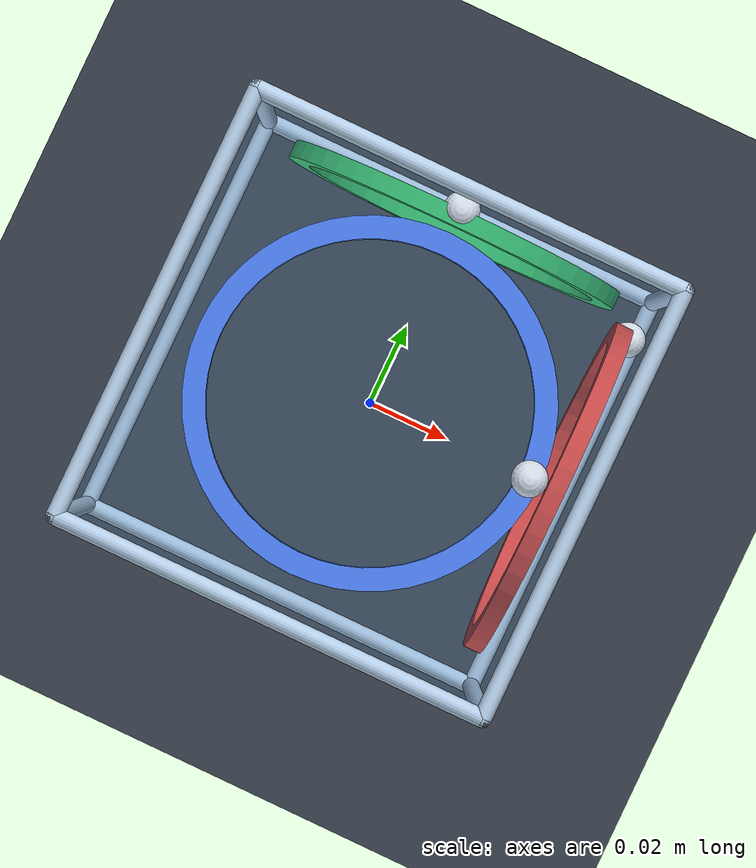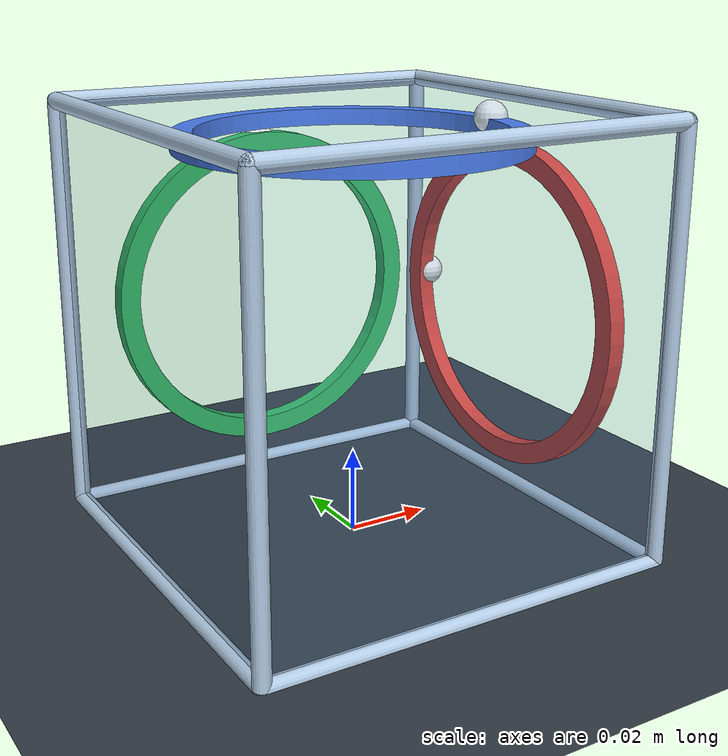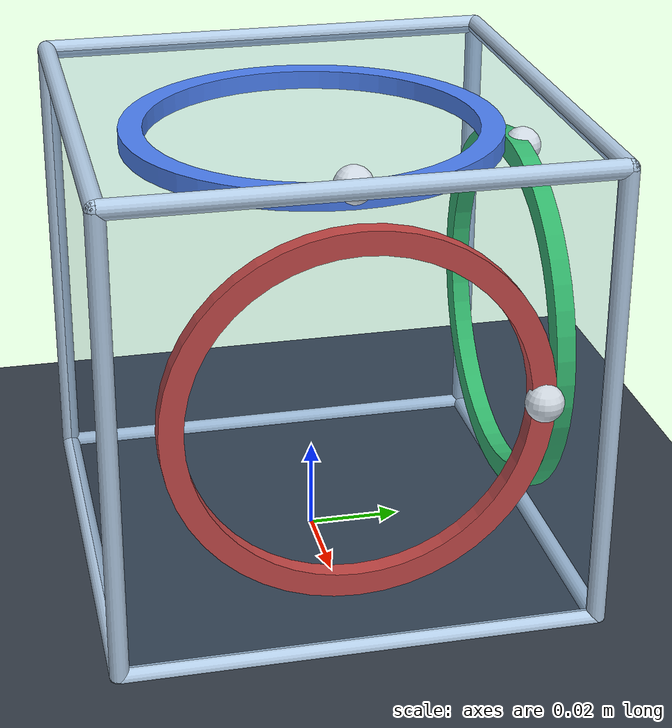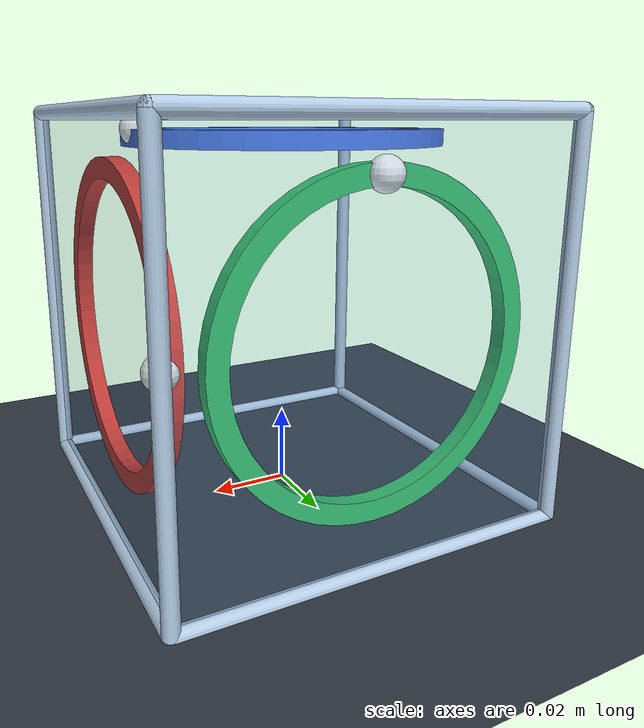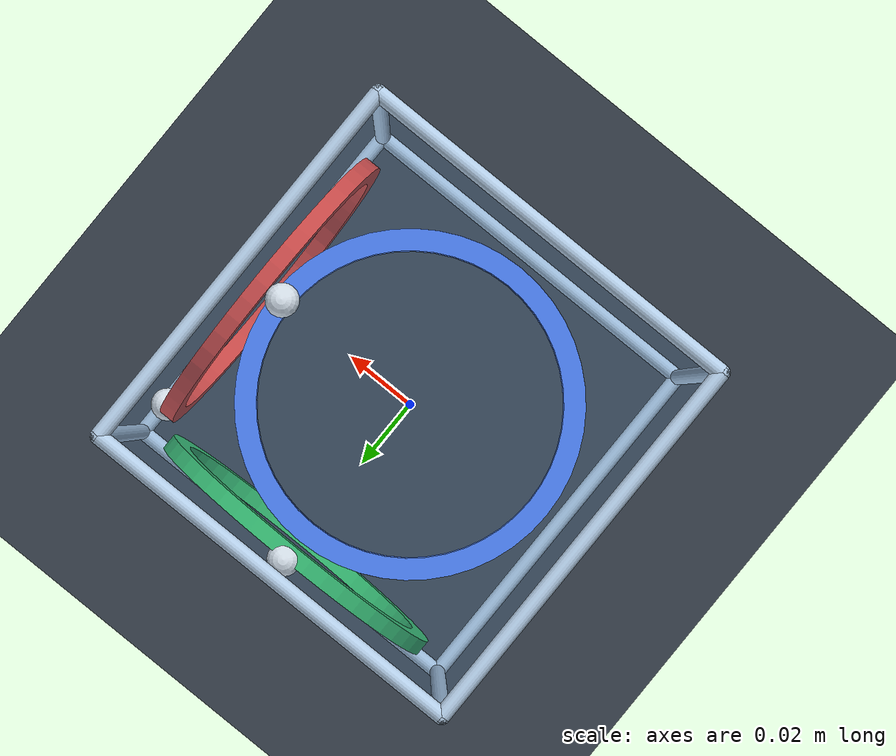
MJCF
<mujoco model="synthetic-annular-mechanism-fixture-spin-brake-v2">
  <compiler angle="radian" inertiafromgeom="false" />
  <option timestep="0.0001" integrator="RK4" solver="Newton" iterations="50" tolerance="1e-10" gravity="0 0 -9.8100000000000005" cone="elliptic">
    <flag energy="enable" />
  </option>
  <visual>
    <global offwidth="960" offheight="720" />
  </visual>
  <asset>
    <texture name="grid" type="2d" builtin="checker" rgb1=".17 .20 .24" rgb2=".23 .27 .31" width="256" height="256" />
    <material name="floor" texture="grid" texrepeat="12 12" />
    <mesh name="wheel_x_annulus" vertex="0.040000000000000001 0 -0.002 0.040000000000000001 0 0.002 0.035000000000000003 0 -0.002 0.035000000000000003 0 0.002 0.039657794454952419 0.0052210476888020626 -0.002 0.039657794454952419 0.0052210476888020626 0.002 0.034700570148083365 0.0045684167277018056 -0.002 0.034700570148083365 0.0045684167277018056 0.002 0.038637033051562734 0.01035276180410083 -0.002 0.038637033051562734 0.01035276180410083 0.002 0.033807403920117392 0.0090586665785882259 -0.002 0.033807403920117392 0.0090586665785882259 0.002 0.036955181300451473 0.015307337294603592 -0.002 0.036955181300451473 0.015307337294603592 0.002 0.032335783637895042 0.013393920132778143 -0.002 0.032335783637895042 0.013393920132778143 0.002 0.034641016151377546 0.019999999999999997 -0.002 0.034641016151377546 0.019999999999999997 0.002 0.030310889132455356 0.017499999999999998 -0.002 0.030310889132455356 0.017499999999999998 0.002 0.031734133611649409 0.024350457160348827 -0.002 0.031734133611649409 0.024350457160348827 0.002 0.027767366910193235 0.021306650015305226 -0.002 0.027767366910193235 0.021306650015305226 0.002 0.028284271247461905 0.028284271247461898 -0.002 0.028284271247461905 0.028284271247461898 0.002 0.024748737341529166 0.024748737341529162 -0.002 0.024748737341529166 0.024748737341529162 0.002 0.024350457160348827 0.031734133611649409 -0.002 0.024350457160348827 0.031734133611649409 0.002 0.021306650015305226 0.027767366910193235 -0.002 0.021306650015305226 0.027767366910193235 0.002 0.020000000000000004 0.034641016151377546 -0.002 0.020000000000000004 0.034641016151377546 0.002 0.017500000000000005 0.030310889132455353 -0.002 0.017500000000000005 0.030310889132455353 0.002 0.015307337294603594 0.036955181300451473 -0.002 0.015307337294603594 0.036955181300451473 0.002 0.013393920132778146 0.032335783637895042 -0.002 0.013393920132778146 0.032335783637895042 0.002 0.01035276180410083 0.038637033051562734 -0.002 0.01035276180410083 0.038637033051562734 0.002 0.0090586665785882259 0.033807403920117392 -0.002 0.0090586665785882259 0.033807403920117392 0.002 0.0052210476888020687 0.039657794454952419 -0.002 0.0052210476888020687 0.039657794454952419 0.002 0.0045684167277018108 0.034700570148083365 -0.002 0.0045684167277018108 0.034700570148083365 0.002 2.4492935982947064e-18 0.040000000000000001 -0.002 2.4492935982947064e-18 0.040000000000000001 0.002 2.1431318985078684e-18 0.035000000000000003 -0.002 2.1431318985078684e-18 0.035000000000000003 0.002 -0.0052210476888020644 0.039657794454952419 -0.002 -0.0052210476888020644 0.039657794454952419 0.002 -0.0045684167277018064 0.034700570148083365 -0.002 -0.0045684167277018064 0.034700570148083365 0.002 -0.010352761804100826 0.038637033051562734 -0.002 -0.010352761804100826 0.038637033051562734 0.002 -0.0090586665785882224 0.033807403920117392 -0.002 -0.0090586665785882224 0.033807403920117392 0.002 -0.01530733729460358 0.036955181300451473 -0.002 -0.01530733729460358 0.036955181300451473 0.002 -0.013393920132778134 0.032335783637895042 -0.002 -0.013393920132778134 0.032335783637895042 0.002 -0.019999999999999993 0.034641016151377546 -0.002 -0.019999999999999993 0.034641016151377546 0.002 -0.017499999999999995 0.030310889132455356 -0.002 -0.017499999999999995 0.030310889132455356 0.002 -0.024350457160348827 0.031734133611649409 -0.002 -0.024350457160348827 0.031734133611649409 0.002 -0.021306650015305226 0.027767366910193235 -0.002 -0.021306650015305226 0.027767366910193235 0.002 -0.028284271247461898 0.028284271247461905 -0.002 -0.028284271247461898 0.028284271247461905 0.002 -0.024748737341529162 0.024748737341529166 -0.002 -0.024748737341529162 0.024748737341529166 0.002 -0.031734133611649402 0.024350457160348837 -0.002 -0.031734133611649402 0.024350457160348837 0.002 -0.027767366910193228 0.021306650015305233 -0.002 -0.027767366910193228 0.021306650015305233 0.002 -0.034641016151377546 0.019999999999999997 -0.002 -0.034641016151377546 0.019999999999999997 0.002 -0.030310889132455356 0.017499999999999998 -0.002 -0.030310889132455356 0.017499999999999998 0.002 -0.036955181300451473 0.015307337294603596 -0.002 -0.036955181300451473 0.015307337294603596 0.002 -0.032335783637895042 0.013393920132778148 -0.002 -0.032335783637895042 0.013393920132778148 0.002 -0.038637033051562727 0.010352761804100842 -0.002 -0.038637033051562727 0.010352761804100842 0.002 -0.033807403920117392 0.0090586665785882363 -0.002 -0.033807403920117392 0.0090586665785882363 0.002 -0.039657794454952419 0.00522104768880208 -0.002 -0.039657794454952419 0.00522104768880208 0.002 -0.034700570148083365 0.0045684167277018203 -0.002 -0.034700570148083365 0.0045684167277018203 0.002 -0.040000000000000001 4.8985871965894128e-18 -0.002 -0.040000000000000001 4.8985871965894128e-18 0.002 -0.035000000000000003 4.2862637970157367e-18 -0.002 -0.035000000000000003 4.2862637970157367e-18 0.002 -0.039657794454952419 -0.0052210476888020704 -0.002 -0.039657794454952419 -0.0052210476888020704 0.002 -0.034700570148083365 -0.0045684167277018125 -0.002 -0.034700570148083365 -0.0045684167277018125 0.002 -0.038637033051562734 -0.010352761804100831 -0.002 -0.038637033051562734 -0.010352761804100831 0.002 -0.033807403920117392 -0.0090586665785882294 -0.002 -0.033807403920117392 -0.0090586665785882294 0.002 -0.036955181300451473 -0.015307337294603587 -0.002 -0.036955181300451473 -0.015307337294603587 0.002 -0.032335783637895042 -0.013393920132778139 -0.002 -0.032335783637895042 -0.013393920132778139 0.002 -0.034641016151377553 -0.01999999999999999 -0.002 -0.034641016151377553 -0.01999999999999999 0.002 -0.030310889132455363 -0.017499999999999995 -0.002 -0.030310889132455363 -0.017499999999999995 0.002 -0.031734133611649409 -0.024350457160348827 -0.002 -0.031734133611649409 -0.024350457160348827 0.002 -0.027767366910193235 -0.021306650015305226 -0.002 -0.027767366910193235 -0.021306650015305226 0.002 -0.028284271247461915 -0.028284271247461884 -0.002 -0.028284271247461915 -0.028284271247461884 0.002 -0.02474873734152918 -0.024748737341529152 -0.002 -0.02474873734152918 -0.024748737341529152 0.002 -0.024350457160348837 -0.031734133611649396 -0.002 -0.024350457160348837 -0.031734133611649396 0.002 -0.021306650015305233 -0.027767366910193225 -0.002 -0.021306650015305233 -0.027767366910193225 0.002 -0.020000000000000018 -0.034641016151377539 -0.002 -0.020000000000000018 -0.034641016151377539 0.002 -0.017500000000000016 -0.030310889132455346 -0.002 -0.017500000000000016 -0.030310889132455346 0.002 -0.01530733729460358 -0.036955181300451473 -0.002 -0.01530733729460358 -0.036955181300451473 0.002 -0.013393920132778134 -0.032335783637895042 -0.002 -0.013393920132778134 -0.032335783637895042 0.002 -0.010352761804100826 -0.038637033051562734 -0.002 -0.010352761804100826 -0.038637033051562734 0.002 -0.0090586665785882224 -0.033807403920117392 -0.002 -0.0090586665785882224 -0.033807403920117392 0.002 -0.0052210476888020652 -0.039657794454952419 -0.002 -0.0052210476888020652 -0.039657794454952419 0.002 -0.0045684167277018073 -0.034700570148083365 -0.002 -0.0045684167277018073 -0.034700570148083365 0.002 -7.3478807948841184e-18 -0.040000000000000001 -0.002 -7.3478807948841184e-18 -0.040000000000000001 0.002 -6.4293956955236047e-18 -0.035000000000000003 -0.002 -6.4293956955236047e-18 -0.035000000000000003 0.002 0.0052210476888020505 -0.039657794454952419 -0.002 0.0052210476888020505 -0.039657794454952419 0.002 0.0045684167277017951 -0.034700570148083372 -0.002 0.0045684167277017951 -0.034700570148083372 0.002 0.010352761804100812 -0.038637033051562734 -0.002 0.010352761804100812 -0.038637033051562734 0.002 0.009058666578588212 -0.033807403920117399 -0.002 0.009058666578588212 -0.033807403920117399 0.002 0.015307337294603568 -0.03695518130045148 -0.002 0.015307337294603568 -0.03695518130045148 0.002 0.013393920132778122 -0.032335783637895049 -0.002 0.013393920132778122 -0.032335783637895049 0.002 0.020000000000000004 -0.034641016151377546 -0.002 0.020000000000000004 -0.034641016151377546 0.002 0.017500000000000005 -0.030310889132455353 -0.002 0.017500000000000005 -0.030310889132455353 0.002 0.024350457160348796 -0.03173413361164943 -0.002 0.024350457160348796 -0.03173413361164943 0.002 0.021306650015305198 -0.027767366910193252 -0.002 0.021306650015305198 -0.027767366910193252 0.002 0.028284271247461894 -0.028284271247461908 -0.002 0.028284271247461894 -0.028284271247461908 0.002 0.024748737341529159 -0.024748737341529173 -0.002 0.024748737341529159 -0.024748737341529173 0.002 0.031734133611649396 -0.024350457160348837 -0.002 0.031734133611649396 -0.024350457160348837 0.002 0.027767366910193225 -0.021306650015305233 -0.002 0.027767366910193225 -0.021306650015305233 0.002 0.034641016151377539 -0.020000000000000018 -0.002 0.034641016151377539 -0.020000000000000018 0.002 0.030310889132455346 -0.017500000000000016 -0.002 0.030310889132455346 -0.017500000000000016 0.002 0.036955181300451473 -0.015307337294603584 -0.002 0.036955181300451473 -0.015307337294603584 0.002 0.032335783637895042 -0.013393920132778136 -0.002 0.032335783637895042 -0.013393920132778136 0.002 0.038637033051562727 -0.010352761804100863 -0.002 0.038637033051562727 -0.010352761804100863 0.002 0.033807403920117385 -0.0090586665785882554 -0.002 0.033807403920117385 -0.0090586665785882554 0.002 0.039657794454952419 -0.0052210476888020678 -0.002 0.039657794454952419 -0.0052210476888020678 0.002 0.034700570148083365 -0.004568416727701809 -0.002 0.034700570148083365 -0.004568416727701809 0.002" face="0 4 5 0 5 1 2 3 7 2 7 6 1 5 7 1 7 3 0 2 6 0 6 4 4 8 9 4 9 5 6 7 11 6 11 10 5 9 11 5 11 7 4 6 10 4 10 8 8 12 13 8 13 9 10 11 15 10 15 14 9 13 15 9 15 11 8 10 14 8 14 12 12 16 17 12 17 13 14 15 19 14 19 18 13 17 19 13 19 15 12 14 18 12 18 16 16 20 21 16 21 17 18 19 23 18 23 22 17 21 23 17 23 19 16 18 22 16 22 20 20 24 25 20 25 21 22 23 27 22 27 26 21 25 27 21 27 23 20 22 26 20 26 24 24 28 29 24 29 25 26 27 31 26 31 30 25 29 31 25 31 27 24 26 30 24 30 28 28 32 33 28 33 29 30 31 35 30 35 34 29 33 35 29 35 31 28 30 34 28 34 32 32 36 37 32 37 33 34 35 39 34 39 38 33 37 39 33 39 35 32 34 38 32 38 36 36 40 41 36 41 37 38 39 43 38 43 42 37 41 43 37 43 39 36 38 42 36 42 40 40 44 45 40 45 41 42 43 47 42 47 46 41 45 47 41 47 43 40 42 46 40 46 44 44 48 49 44 49 45 46 47 51 46 51 50 45 49 51 45 51 47 44 46 50 44 50 48 48 52 53 48 53 49 50 51 55 50 55 54 49 53 55 49 55 51 48 50 54 48 54 52 52 56 57 52 57 53 54 55 59 54 59 58 53 57 59 53 59 55 52 54 58 52 58 56 56 60 61 56 61 57 58 59 63 58 63 62 57 61 63 57 63 59 56 58 62 56 62 60 60 64 65 60 65 61 62 63 67 62 67 66 61 65 67 61 67 63 60 62 66 60 66 64 64 68 69 64 69 65 66 67 71 66 71 70 65 69 71 65 71 67 64 66 70 64 70 68 68 72 73 68 73 69 70 71 75 70 75 74 69 73 75 69 75 71 68 70 74 68 74 72 72 76 77 72 77 73 74 75 79 74 79 78 73 77 79 73 79 75 72 74 78 72 78 76 76 80 81 76 81 77 78 79 83 78 83 82 77 81 83 77 83 79 76 78 82 76 82 80 80 84 85 80 85 81 82 83 87 82 87 86 81 85 87 81 87 83 80 82 86 80 86 84 84 88 89 84 89 85 86 87 91 86 91 90 85 89 91 85 91 87 84 86 90 84 90 88 88 92 93 88 93 89 90 91 95 90 95 94 89 93 95 89 95 91 88 90 94 88 94 92 92 96 97 92 97 93 94 95 99 94 99 98 93 97 99 93 99 95 92 94 98 92 98 96 96 100 101 96 101 97 98 99 103 98 103 102 97 101 103 97 103 99 96 98 102 96 102 100 100 104 105 100 105 101 102 103 107 102 107 106 101 105 107 101 107 103 100 102 106 100 106 104 104 108 109 104 109 105 106 107 111 106 111 110 105 109 111 105 111 107 104 106 110 104 110 108 108 112 113 108 113 109 110 111 115 110 115 114 109 113 115 109 115 111 108 110 114 108 114 112 112 116 117 112 117 113 114 115 119 114 119 118 113 117 119 113 119 115 112 114 118 112 118 116 116 120 121 116 121 117 118 119 123 118 123 122 117 121 123 117 123 119 116 118 122 116 122 120 120 124 125 120 125 121 122 123 127 122 127 126 121 125 127 121 127 123 120 122 126 120 126 124 124 128 129 124 129 125 126 127 131 126 131 130 125 129 131 125 131 127 124 126 130 124 130 128 128 132 133 128 133 129 130 131 135 130 135 134 129 133 135 129 135 131 128 130 134 128 134 132 132 136 137 132 137 133 134 135 139 134 139 138 133 137 139 133 139 135 132 134 138 132 138 136 136 140 141 136 141 137 138 139 143 138 143 142 137 141 143 137 143 139 136 138 142 136 142 140 140 144 145 140 145 141 142 143 147 142 147 146 141 145 147 141 147 143 140 142 146 140 146 144 144 148 149 144 149 145 146 147 151 146 151 150 145 149 151 145 151 147 144 146 150 144 150 148 148 152 153 148 153 149 150 151 155 150 155 154 149 153 155 149 155 151 148 150 154 148 154 152 152 156 157 152 157 153 154 155 159 154 159 158 153 157 159 153 159 155 152 154 158 152 158 156 156 160 161 156 161 157 158 159 163 158 163 162 157 161 163 157 163 159 156 158 162 156 162 160 160 164 165 160 165 161 162 163 167 162 167 166 161 165 167 161 167 163 160 162 166 160 166 164 164 168 169 164 169 165 166 167 171 166 171 170 165 169 171 165 171 167 164 166 170 164 170 168 168 172 173 168 173 169 170 171 175 170 175 174 169 173 175 169 175 171 168 170 174 168 174 172 172 176 177 172 177 173 174 175 179 174 179 178 173 177 179 173 179 175 172 174 178 172 178 176 176 180 181 176 181 177 178 179 183 178 183 182 177 181 183 177 183 179 176 178 182 176 182 180 180 184 185 180 185 181 182 183 187 182 187 186 181 185 187 181 187 183 180 182 186 180 186 184 184 188 189 184 189 185 186 187 191 186 191 190 185 189 191 185 191 187 184 186 190 184 190 188 188 0 1 188 1 189 190 191 3 190 3 2 189 1 3 189 3 191 188 190 2 188 2 0" />
    <mesh name="wheel_y_annulus" vertex="0.040000000000000001 0 -0.002 0.040000000000000001 0 0.002 0.035000000000000003 0 -0.002 0.035000000000000003 0 0.002 0.039657794454952419 0.0052210476888020626 -0.002 0.039657794454952419 0.0052210476888020626 0.002 0.034700570148083365 0.0045684167277018056 -0.002 0.034700570148083365 0.0045684167277018056 0.002 0.038637033051562734 0.01035276180410083 -0.002 0.038637033051562734 0.01035276180410083 0.002 0.033807403920117392 0.0090586665785882259 -0.002 0.033807403920117392 0.0090586665785882259 0.002 0.036955181300451473 0.015307337294603592 -0.002 0.036955181300451473 0.015307337294603592 0.002 0.032335783637895042 0.013393920132778143 -0.002 0.032335783637895042 0.013393920132778143 0.002 0.034641016151377546 0.019999999999999997 -0.002 0.034641016151377546 0.019999999999999997 0.002 0.030310889132455356 0.017499999999999998 -0.002 0.030310889132455356 0.017499999999999998 0.002 0.031734133611649409 0.024350457160348827 -0.002 0.031734133611649409 0.024350457160348827 0.002 0.027767366910193235 0.021306650015305226 -0.002 0.027767366910193235 0.021306650015305226 0.002 0.028284271247461905 0.028284271247461898 -0.002 0.028284271247461905 0.028284271247461898 0.002 0.024748737341529166 0.024748737341529162 -0.002 0.024748737341529166 0.024748737341529162 0.002 0.024350457160348827 0.031734133611649409 -0.002 0.024350457160348827 0.031734133611649409 0.002 0.021306650015305226 0.027767366910193235 -0.002 0.021306650015305226 0.027767366910193235 0.002 0.020000000000000004 0.034641016151377546 -0.002 0.020000000000000004 0.034641016151377546 0.002 0.017500000000000005 0.030310889132455353 -0.002 0.017500000000000005 0.030310889132455353 0.002 0.015307337294603594 0.036955181300451473 -0.002 0.015307337294603594 0.036955181300451473 0.002 0.013393920132778146 0.032335783637895042 -0.002 0.013393920132778146 0.032335783637895042 0.002 0.01035276180410083 0.038637033051562734 -0.002 0.01035276180410083 0.038637033051562734 0.002 0.0090586665785882259 0.033807403920117392 -0.002 0.0090586665785882259 0.033807403920117392 0.002 0.0052210476888020687 0.039657794454952419 -0.002 0.0052210476888020687 0.039657794454952419 0.002 0.0045684167277018108 0.034700570148083365 -0.002 0.0045684167277018108 0.034700570148083365 0.002 2.4492935982947064e-18 0.040000000000000001 -0.002 2.4492935982947064e-18 0.040000000000000001 0.002 2.1431318985078684e-18 0.035000000000000003 -0.002 2.1431318985078684e-18 0.035000000000000003 0.002 -0.0052210476888020644 0.039657794454952419 -0.002 -0.0052210476888020644 0.039657794454952419 0.002 -0.0045684167277018064 0.034700570148083365 -0.002 -0.0045684167277018064 0.034700570148083365 0.002 -0.010352761804100826 0.038637033051562734 -0.002 -0.010352761804100826 0.038637033051562734 0.002 -0.0090586665785882224 0.033807403920117392 -0.002 -0.0090586665785882224 0.033807403920117392 0.002 -0.01530733729460358 0.036955181300451473 -0.002 -0.01530733729460358 0.036955181300451473 0.002 -0.013393920132778134 0.032335783637895042 -0.002 -0.013393920132778134 0.032335783637895042 0.002 -0.019999999999999993 0.034641016151377546 -0.002 -0.019999999999999993 0.034641016151377546 0.002 -0.017499999999999995 0.030310889132455356 -0.002 -0.017499999999999995 0.030310889132455356 0.002 -0.024350457160348827 0.031734133611649409 -0.002 -0.024350457160348827 0.031734133611649409 0.002 -0.021306650015305226 0.027767366910193235 -0.002 -0.021306650015305226 0.027767366910193235 0.002 -0.028284271247461898 0.028284271247461905 -0.002 -0.028284271247461898 0.028284271247461905 0.002 -0.024748737341529162 0.024748737341529166 -0.002 -0.024748737341529162 0.024748737341529166 0.002 -0.031734133611649402 0.024350457160348837 -0.002 -0.031734133611649402 0.024350457160348837 0.002 -0.027767366910193228 0.021306650015305233 -0.002 -0.027767366910193228 0.021306650015305233 0.002 -0.034641016151377546 0.019999999999999997 -0.002 -0.034641016151377546 0.019999999999999997 0.002 -0.030310889132455356 0.017499999999999998 -0.002 -0.030310889132455356 0.017499999999999998 0.002 -0.036955181300451473 0.015307337294603596 -0.002 -0.036955181300451473 0.015307337294603596 0.002 -0.032335783637895042 0.013393920132778148 -0.002 -0.032335783637895042 0.013393920132778148 0.002 -0.038637033051562727 0.010352761804100842 -0.002 -0.038637033051562727 0.010352761804100842 0.002 -0.033807403920117392 0.0090586665785882363 -0.002 -0.033807403920117392 0.0090586665785882363 0.002 -0.039657794454952419 0.00522104768880208 -0.002 -0.039657794454952419 0.00522104768880208 0.002 -0.034700570148083365 0.0045684167277018203 -0.002 -0.034700570148083365 0.0045684167277018203 0.002 -0.040000000000000001 4.8985871965894128e-18 -0.002 -0.040000000000000001 4.8985871965894128e-18 0.002 -0.035000000000000003 4.2862637970157367e-18 -0.002 -0.035000000000000003 4.2862637970157367e-18 0.002 -0.039657794454952419 -0.0052210476888020704 -0.002 -0.039657794454952419 -0.0052210476888020704 0.002 -0.034700570148083365 -0.0045684167277018125 -0.002 -0.034700570148083365 -0.0045684167277018125 0.002 -0.038637033051562734 -0.010352761804100831 -0.002 -0.038637033051562734 -0.010352761804100831 0.002 -0.033807403920117392 -0.0090586665785882294 -0.002 -0.033807403920117392 -0.0090586665785882294 0.002 -0.036955181300451473 -0.015307337294603587 -0.002 -0.036955181300451473 -0.015307337294603587 0.002 -0.032335783637895042 -0.013393920132778139 -0.002 -0.032335783637895042 -0.013393920132778139 0.002 -0.034641016151377553 -0.01999999999999999 -0.002 -0.034641016151377553 -0.01999999999999999 0.002 -0.030310889132455363 -0.017499999999999995 -0.002 -0.030310889132455363 -0.017499999999999995 0.002 -0.031734133611649409 -0.024350457160348827 -0.002 -0.031734133611649409 -0.024350457160348827 0.002 -0.027767366910193235 -0.021306650015305226 -0.002 -0.027767366910193235 -0.021306650015305226 0.002 -0.028284271247461915 -0.028284271247461884 -0.002 -0.028284271247461915 -0.028284271247461884 0.002 -0.02474873734152918 -0.024748737341529152 -0.002 -0.02474873734152918 -0.024748737341529152 0.002 -0.024350457160348837 -0.031734133611649396 -0.002 -0.024350457160348837 -0.031734133611649396 0.002 -0.021306650015305233 -0.027767366910193225 -0.002 -0.021306650015305233 -0.027767366910193225 0.002 -0.020000000000000018 -0.034641016151377539 -0.002 -0.020000000000000018 -0.034641016151377539 0.002 -0.017500000000000016 -0.030310889132455346 -0.002 -0.017500000000000016 -0.030310889132455346 0.002 -0.01530733729460358 -0.036955181300451473 -0.002 -0.01530733729460358 -0.036955181300451473 0.002 -0.013393920132778134 -0.032335783637895042 -0.002 -0.013393920132778134 -0.032335783637895042 0.002 -0.010352761804100826 -0.038637033051562734 -0.002 -0.010352761804100826 -0.038637033051562734 0.002 -0.0090586665785882224 -0.033807403920117392 -0.002 -0.0090586665785882224 -0.033807403920117392 0.002 -0.0052210476888020652 -0.039657794454952419 -0.002 -0.0052210476888020652 -0.039657794454952419 0.002 -0.0045684167277018073 -0.034700570148083365 -0.002 -0.0045684167277018073 -0.034700570148083365 0.002 -7.3478807948841184e-18 -0.040000000000000001 -0.002 -7.3478807948841184e-18 -0.040000000000000001 0.002 -6.4293956955236047e-18 -0.035000000000000003 -0.002 -6.4293956955236047e-18 -0.035000000000000003 0.002 0.0052210476888020505 -0.039657794454952419 -0.002 0.0052210476888020505 -0.039657794454952419 0.002 0.0045684167277017951 -0.034700570148083372 -0.002 0.0045684167277017951 -0.034700570148083372 0.002 0.010352761804100812 -0.038637033051562734 -0.002 0.010352761804100812 -0.038637033051562734 0.002 0.009058666578588212 -0.033807403920117399 -0.002 0.009058666578588212 -0.033807403920117399 0.002 0.015307337294603568 -0.03695518130045148 -0.002 0.015307337294603568 -0.03695518130045148 0.002 0.013393920132778122 -0.032335783637895049 -0.002 0.013393920132778122 -0.032335783637895049 0.002 0.020000000000000004 -0.034641016151377546 -0.002 0.020000000000000004 -0.034641016151377546 0.002 0.017500000000000005 -0.030310889132455353 -0.002 0.017500000000000005 -0.030310889132455353 0.002 0.024350457160348796 -0.03173413361164943 -0.002 0.024350457160348796 -0.03173413361164943 0.002 0.021306650015305198 -0.027767366910193252 -0.002 0.021306650015305198 -0.027767366910193252 0.002 0.028284271247461894 -0.028284271247461908 -0.002 0.028284271247461894 -0.028284271247461908 0.002 0.024748737341529159 -0.024748737341529173 -0.002 0.024748737341529159 -0.024748737341529173 0.002 0.031734133611649396 -0.024350457160348837 -0.002 0.031734133611649396 -0.024350457160348837 0.002 0.027767366910193225 -0.021306650015305233 -0.002 0.027767366910193225 -0.021306650015305233 0.002 0.034641016151377539 -0.020000000000000018 -0.002 0.034641016151377539 -0.020000000000000018 0.002 0.030310889132455346 -0.017500000000000016 -0.002 0.030310889132455346 -0.017500000000000016 0.002 0.036955181300451473 -0.015307337294603584 -0.002 0.036955181300451473 -0.015307337294603584 0.002 0.032335783637895042 -0.013393920132778136 -0.002 0.032335783637895042 -0.013393920132778136 0.002 0.038637033051562727 -0.010352761804100863 -0.002 0.038637033051562727 -0.010352761804100863 0.002 0.033807403920117385 -0.0090586665785882554 -0.002 0.033807403920117385 -0.0090586665785882554 0.002 0.039657794454952419 -0.0052210476888020678 -0.002 0.039657794454952419 -0.0052210476888020678 0.002 0.034700570148083365 -0.004568416727701809 -0.002 0.034700570148083365 -0.004568416727701809 0.002" face="0 4 5 0 5 1 2 3 7 2 7 6 1 5 7 1 7 3 0 2 6 0 6 4 4 8 9 4 9 5 6 7 11 6 11 10 5 9 11 5 11 7 4 6 10 4 10 8 8 12 13 8 13 9 10 11 15 10 15 14 9 13 15 9 15 11 8 10 14 8 14 12 12 16 17 12 17 13 14 15 19 14 19 18 13 17 19 13 19 15 12 14 18 12 18 16 16 20 21 16 21 17 18 19 23 18 23 22 17 21 23 17 23 19 16 18 22 16 22 20 20 24 25 20 25 21 22 23 27 22 27 26 21 25 27 21 27 23 20 22 26 20 26 24 24 28 29 24 29 25 26 27 31 26 31 30 25 29 31 25 31 27 24 26 30 24 30 28 28 32 33 28 33 29 30 31 35 30 35 34 29 33 35 29 35 31 28 30 34 28 34 32 32 36 37 32 37 33 34 35 39 34 39 38 33 37 39 33 39 35 32 34 38 32 38 36 36 40 41 36 41 37 38 39 43 38 43 42 37 41 43 37 43 39 36 38 42 36 42 40 40 44 45 40 45 41 42 43 47 42 47 46 41 45 47 41 47 43 40 42 46 40 46 44 44 48 49 44 49 45 46 47 51 46 51 50 45 49 51 45 51 47 44 46 50 44 50 48 48 52 53 48 53 49 50 51 55 50 55 54 49 53 55 49 55 51 48 50 54 48 54 52 52 56 57 52 57 53 54 55 59 54 59 58 53 57 59 53 59 55 52 54 58 52 58 56 56 60 61 56 61 57 58 59 63 58 63 62 57 61 63 57 63 59 56 58 62 56 62 60 60 64 65 60 65 61 62 63 67 62 67 66 61 65 67 61 67 63 60 62 66 60 66 64 64 68 69 64 69 65 66 67 71 66 71 70 65 69 71 65 71 67 64 66 70 64 70 68 68 72 73 68 73 69 70 71 75 70 75 74 69 73 75 69 75 71 68 70 74 68 74 72 72 76 77 72 77 73 74 75 79 74 79 78 73 77 79 73 79 75 72 74 78 72 78 76 76 80 81 76 81 77 78 79 83 78 83 82 77 81 83 77 83 79 76 78 82 76 82 80 80 84 85 80 85 81 82 83 87 82 87 86 81 85 87 81 87 83 80 82 86 80 86 84 84 88 89 84 89 85 86 87 91 86 91 90 85 89 91 85 91 87 84 86 90 84 90 88 88 92 93 88 93 89 90 91 95 90 95 94 89 93 95 89 95 91 88 90 94 88 94 92 92 96 97 92 97 93 94 95 99 94 99 98 93 97 99 93 99 95 92 94 98 92 98 96 96 100 101 96 101 97 98 99 103 98 103 102 97 101 103 97 103 99 96 98 102 96 102 100 100 104 105 100 105 101 102 103 107 102 107 106 101 105 107 101 107 103 100 102 106 100 106 104 104 108 109 104 109 105 106 107 111 106 111 110 105 109 111 105 111 107 104 106 110 104 110 108 108 112 113 108 113 109 110 111 115 110 115 114 109 113 115 109 115 111 108 110 114 108 114 112 112 116 117 112 117 113 114 115 119 114 119 118 113 117 119 113 119 115 112 114 118 112 118 116 116 120 121 116 121 117 118 119 123 118 123 122 117 121 123 117 123 119 116 118 122 116 122 120 120 124 125 120 125 121 122 123 127 122 127 126 121 125 127 121 127 123 120 122 126 120 126 124 124 128 129 124 129 125 126 127 131 126 131 130 125 129 131 125 131 127 124 126 130 124 130 128 128 132 133 128 133 129 130 131 135 130 135 134 129 133 135 129 135 131 128 130 134 128 134 132 132 136 137 132 137 133 134 135 139 134 139 138 133 137 139 133 139 135 132 134 138 132 138 136 136 140 141 136 141 137 138 139 143 138 143 142 137 141 143 137 143 139 136 138 142 136 142 140 140 144 145 140 145 141 142 143 147 142 147 146 141 145 147 141 147 143 140 142 146 140 146 144 144 148 149 144 149 145 146 147 151 146 151 150 145 149 151 145 151 147 144 146 150 144 150 148 148 152 153 148 153 149 150 151 155 150 155 154 149 153 155 149 155 151 148 150 154 148 154 152 152 156 157 152 157 153 154 155 159 154 159 158 153 157 159 153 159 155 152 154 158 152 158 156 156 160 161 156 161 157 158 159 163 158 163 162 157 161 163 157 163 159 156 158 162 156 162 160 160 164 165 160 165 161 162 163 167 162 167 166 161 165 167 161 167 163 160 162 166 160 166 164 164 168 169 164 169 165 166 167 171 166 171 170 165 169 171 165 171 167 164 166 170 164 170 168 168 172 173 168 173 169 170 171 175 170 175 174 169 173 175 169 175 171 168 170 174 168 174 172 172 176 177 172 177 173 174 175 179 174 179 178 173 177 179 173 179 175 172 174 178 172 178 176 176 180 181 176 181 177 178 179 183 178 183 182 177 181 183 177 183 179 176 178 182 176 182 180 180 184 185 180 185 181 182 183 187 182 187 186 181 185 187 181 187 183 180 182 186 180 186 184 184 188 189 184 189 185 186 187 191 186 191 190 185 189 191 185 191 187 184 186 190 184 190 188 188 0 1 188 1 189 190 191 3 190 3 2 189 1 3 189 3 191 188 190 2 188 2 0" />
    <mesh name="wheel_z_annulus" vertex="0.040000000000000001 0 -0.002 0.040000000000000001 0 0.002 0.035000000000000003 0 -0.002 0.035000000000000003 0 0.002 0.039657794454952419 0.0052210476888020626 -0.002 0.039657794454952419 0.0052210476888020626 0.002 0.034700570148083365 0.0045684167277018056 -0.002 0.034700570148083365 0.0045684167277018056 0.002 0.038637033051562734 0.01035276180410083 -0.002 0.038637033051562734 0.01035276180410083 0.002 0.033807403920117392 0.0090586665785882259 -0.002 0.033807403920117392 0.0090586665785882259 0.002 0.036955181300451473 0.015307337294603592 -0.002 0.036955181300451473 0.015307337294603592 0.002 0.032335783637895042 0.013393920132778143 -0.002 0.032335783637895042 0.013393920132778143 0.002 0.034641016151377546 0.019999999999999997 -0.002 0.034641016151377546 0.019999999999999997 0.002 0.030310889132455356 0.017499999999999998 -0.002 0.030310889132455356 0.017499999999999998 0.002 0.031734133611649409 0.024350457160348827 -0.002 0.031734133611649409 0.024350457160348827 0.002 0.027767366910193235 0.021306650015305226 -0.002 0.027767366910193235 0.021306650015305226 0.002 0.028284271247461905 0.028284271247461898 -0.002 0.028284271247461905 0.028284271247461898 0.002 0.024748737341529166 0.024748737341529162 -0.002 0.024748737341529166 0.024748737341529162 0.002 0.024350457160348827 0.031734133611649409 -0.002 0.024350457160348827 0.031734133611649409 0.002 0.021306650015305226 0.027767366910193235 -0.002 0.021306650015305226 0.027767366910193235 0.002 0.020000000000000004 0.034641016151377546 -0.002 0.020000000000000004 0.034641016151377546 0.002 0.017500000000000005 0.030310889132455353 -0.002 0.017500000000000005 0.030310889132455353 0.002 0.015307337294603594 0.036955181300451473 -0.002 0.015307337294603594 0.036955181300451473 0.002 0.013393920132778146 0.032335783637895042 -0.002 0.013393920132778146 0.032335783637895042 0.002 0.01035276180410083 0.038637033051562734 -0.002 0.01035276180410083 0.038637033051562734 0.002 0.0090586665785882259 0.033807403920117392 -0.002 0.0090586665785882259 0.033807403920117392 0.002 0.0052210476888020687 0.039657794454952419 -0.002 0.0052210476888020687 0.039657794454952419 0.002 0.0045684167277018108 0.034700570148083365 -0.002 0.0045684167277018108 0.034700570148083365 0.002 2.4492935982947064e-18 0.040000000000000001 -0.002 2.4492935982947064e-18 0.040000000000000001 0.002 2.1431318985078684e-18 0.035000000000000003 -0.002 2.1431318985078684e-18 0.035000000000000003 0.002 -0.0052210476888020644 0.039657794454952419 -0.002 -0.0052210476888020644 0.039657794454952419 0.002 -0.0045684167277018064 0.034700570148083365 -0.002 -0.0045684167277018064 0.034700570148083365 0.002 -0.010352761804100826 0.038637033051562734 -0.002 -0.010352761804100826 0.038637033051562734 0.002 -0.0090586665785882224 0.033807403920117392 -0.002 -0.0090586665785882224 0.033807403920117392 0.002 -0.01530733729460358 0.036955181300451473 -0.002 -0.01530733729460358 0.036955181300451473 0.002 -0.013393920132778134 0.032335783637895042 -0.002 -0.013393920132778134 0.032335783637895042 0.002 -0.019999999999999993 0.034641016151377546 -0.002 -0.019999999999999993 0.034641016151377546 0.002 -0.017499999999999995 0.030310889132455356 -0.002 -0.017499999999999995 0.030310889132455356 0.002 -0.024350457160348827 0.031734133611649409 -0.002 -0.024350457160348827 0.031734133611649409 0.002 -0.021306650015305226 0.027767366910193235 -0.002 -0.021306650015305226 0.027767366910193235 0.002 -0.028284271247461898 0.028284271247461905 -0.002 -0.028284271247461898 0.028284271247461905 0.002 -0.024748737341529162 0.024748737341529166 -0.002 -0.024748737341529162 0.024748737341529166 0.002 -0.031734133611649402 0.024350457160348837 -0.002 -0.031734133611649402 0.024350457160348837 0.002 -0.027767366910193228 0.021306650015305233 -0.002 -0.027767366910193228 0.021306650015305233 0.002 -0.034641016151377546 0.019999999999999997 -0.002 -0.034641016151377546 0.019999999999999997 0.002 -0.030310889132455356 0.017499999999999998 -0.002 -0.030310889132455356 0.017499999999999998 0.002 -0.036955181300451473 0.015307337294603596 -0.002 -0.036955181300451473 0.015307337294603596 0.002 -0.032335783637895042 0.013393920132778148 -0.002 -0.032335783637895042 0.013393920132778148 0.002 -0.038637033051562727 0.010352761804100842 -0.002 -0.038637033051562727 0.010352761804100842 0.002 -0.033807403920117392 0.0090586665785882363 -0.002 -0.033807403920117392 0.0090586665785882363 0.002 -0.039657794454952419 0.00522104768880208 -0.002 -0.039657794454952419 0.00522104768880208 0.002 -0.034700570148083365 0.0045684167277018203 -0.002 -0.034700570148083365 0.0045684167277018203 0.002 -0.040000000000000001 4.8985871965894128e-18 -0.002 -0.040000000000000001 4.8985871965894128e-18 0.002 -0.035000000000000003 4.2862637970157367e-18 -0.002 -0.035000000000000003 4.2862637970157367e-18 0.002 -0.039657794454952419 -0.0052210476888020704 -0.002 -0.039657794454952419 -0.0052210476888020704 0.002 -0.034700570148083365 -0.0045684167277018125 -0.002 -0.034700570148083365 -0.0045684167277018125 0.002 -0.038637033051562734 -0.010352761804100831 -0.002 -0.038637033051562734 -0.010352761804100831 0.002 -0.033807403920117392 -0.0090586665785882294 -0.002 -0.033807403920117392 -0.0090586665785882294 0.002 -0.036955181300451473 -0.015307337294603587 -0.002 -0.036955181300451473 -0.015307337294603587 0.002 -0.032335783637895042 -0.013393920132778139 -0.002 -0.032335783637895042 -0.013393920132778139 0.002 -0.034641016151377553 -0.01999999999999999 -0.002 -0.034641016151377553 -0.01999999999999999 0.002 -0.030310889132455363 -0.017499999999999995 -0.002 -0.030310889132455363 -0.017499999999999995 0.002 -0.031734133611649409 -0.024350457160348827 -0.002 -0.031734133611649409 -0.024350457160348827 0.002 -0.027767366910193235 -0.021306650015305226 -0.002 -0.027767366910193235 -0.021306650015305226 0.002 -0.028284271247461915 -0.028284271247461884 -0.002 -0.028284271247461915 -0.028284271247461884 0.002 -0.02474873734152918 -0.024748737341529152 -0.002 -0.02474873734152918 -0.024748737341529152 0.002 -0.024350457160348837 -0.031734133611649396 -0.002 -0.024350457160348837 -0.031734133611649396 0.002 -0.021306650015305233 -0.027767366910193225 -0.002 -0.021306650015305233 -0.027767366910193225 0.002 -0.020000000000000018 -0.034641016151377539 -0.002 -0.020000000000000018 -0.034641016151377539 0.002 -0.017500000000000016 -0.030310889132455346 -0.002 -0.017500000000000016 -0.030310889132455346 0.002 -0.01530733729460358 -0.036955181300451473 -0.002 -0.01530733729460358 -0.036955181300451473 0.002 -0.013393920132778134 -0.032335783637895042 -0.002 -0.013393920132778134 -0.032335783637895042 0.002 -0.010352761804100826 -0.038637033051562734 -0.002 -0.010352761804100826 -0.038637033051562734 0.002 -0.0090586665785882224 -0.033807403920117392 -0.002 -0.0090586665785882224 -0.033807403920117392 0.002 -0.0052210476888020652 -0.039657794454952419 -0.002 -0.0052210476888020652 -0.039657794454952419 0.002 -0.0045684167277018073 -0.034700570148083365 -0.002 -0.0045684167277018073 -0.034700570148083365 0.002 -7.3478807948841184e-18 -0.040000000000000001 -0.002 -7.3478807948841184e-18 -0.040000000000000001 0.002 -6.4293956955236047e-18 -0.035000000000000003 -0.002 -6.4293956955236047e-18 -0.035000000000000003 0.002 0.0052210476888020505 -0.039657794454952419 -0.002 0.0052210476888020505 -0.039657794454952419 0.002 0.0045684167277017951 -0.034700570148083372 -0.002 0.0045684167277017951 -0.034700570148083372 0.002 0.010352761804100812 -0.038637033051562734 -0.002 0.010352761804100812 -0.038637033051562734 0.002 0.009058666578588212 -0.033807403920117399 -0.002 0.009058666578588212 -0.033807403920117399 0.002 0.015307337294603568 -0.03695518130045148 -0.002 0.015307337294603568 -0.03695518130045148 0.002 0.013393920132778122 -0.032335783637895049 -0.002 0.013393920132778122 -0.032335783637895049 0.002 0.020000000000000004 -0.034641016151377546 -0.002 0.020000000000000004 -0.034641016151377546 0.002 0.017500000000000005 -0.030310889132455353 -0.002 0.017500000000000005 -0.030310889132455353 0.002 0.024350457160348796 -0.03173413361164943 -0.002 0.024350457160348796 -0.03173413361164943 0.002 0.021306650015305198 -0.027767366910193252 -0.002 0.021306650015305198 -0.027767366910193252 0.002 0.028284271247461894 -0.028284271247461908 -0.002 0.028284271247461894 -0.028284271247461908 0.002 0.024748737341529159 -0.024748737341529173 -0.002 0.024748737341529159 -0.024748737341529173 0.002 0.031734133611649396 -0.024350457160348837 -0.002 0.031734133611649396 -0.024350457160348837 0.002 0.027767366910193225 -0.021306650015305233 -0.002 0.027767366910193225 -0.021306650015305233 0.002 0.034641016151377539 -0.020000000000000018 -0.002 0.034641016151377539 -0.020000000000000018 0.002 0.030310889132455346 -0.017500000000000016 -0.002 0.030310889132455346 -0.017500000000000016 0.002 0.036955181300451473 -0.015307337294603584 -0.002 0.036955181300451473 -0.015307337294603584 0.002 0.032335783637895042 -0.013393920132778136 -0.002 0.032335783637895042 -0.013393920132778136 0.002 0.038637033051562727 -0.010352761804100863 -0.002 0.038637033051562727 -0.010352761804100863 0.002 0.033807403920117385 -0.0090586665785882554 -0.002 0.033807403920117385 -0.0090586665785882554 0.002 0.039657794454952419 -0.0052210476888020678 -0.002 0.039657794454952419 -0.0052210476888020678 0.002 0.034700570148083365 -0.004568416727701809 -0.002 0.034700570148083365 -0.004568416727701809 0.002" face="0 4 5 0 5 1 2 3 7 2 7 6 1 5 7 1 7 3 0 2 6 0 6 4 4 8 9 4 9 5 6 7 11 6 11 10 5 9 11 5 11 7 4 6 10 4 10 8 8 12 13 8 13 9 10 11 15 10 15 14 9 13 15 9 15 11 8 10 14 8 14 12 12 16 17 12 17 13 14 15 19 14 19 18 13 17 19 13 19 15 12 14 18 12 18 16 16 20 21 16 21 17 18 19 23 18 23 22 17 21 23 17 23 19 16 18 22 16 22 20 20 24 25 20 25 21 22 23 27 22 27 26 21 25 27 21 27 23 20 22 26 20 26 24 24 28 29 24 29 25 26 27 31 26 31 30 25 29 31 25 31 27 24 26 30 24 30 28 28 32 33 28 33 29 30 31 35 30 35 34 29 33 35 29 35 31 28 30 34 28 34 32 32 36 37 32 37 33 34 35 39 34 39 38 33 37 39 33 39 35 32 34 38 32 38 36 36 40 41 36 41 37 38 39 43 38 43 42 37 41 43 37 43 39 36 38 42 36 42 40 40 44 45 40 45 41 42 43 47 42 47 46 41 45 47 41 47 43 40 42 46 40 46 44 44 48 49 44 49 45 46 47 51 46 51 50 45 49 51 45 51 47 44 46 50 44 50 48 48 52 53 48 53 49 50 51 55 50 55 54 49 53 55 49 55 51 48 50 54 48 54 52 52 56 57 52 57 53 54 55 59 54 59 58 53 57 59 53 59 55 52 54 58 52 58 56 56 60 61 56 61 57 58 59 63 58 63 62 57 61 63 57 63 59 56 58 62 56 62 60 60 64 65 60 65 61 62 63 67 62 67 66 61 65 67 61 67 63 60 62 66 60 66 64 64 68 69 64 69 65 66 67 71 66 71 70 65 69 71 65 71 67 64 66 70 64 70 68 68 72 73 68 73 69 70 71 75 70 75 74 69 73 75 69 75 71 68 70 74 68 74 72 72 76 77 72 77 73 74 75 79 74 79 78 73 77 79 73 79 75 72 74 78 72 78 76 76 80 81 76 81 77 78 79 83 78 83 82 77 81 83 77 83 79 76 78 82 76 82 80 80 84 85 80 85 81 82 83 87 82 87 86 81 85 87 81 87 83 80 82 86 80 86 84 84 88 89 84 89 85 86 87 91 86 91 90 85 89 91 85 91 87 84 86 90 84 90 88 88 92 93 88 93 89 90 91 95 90 95 94 89 93 95 89 95 91 88 90 94 88 94 92 92 96 97 92 97 93 94 95 99 94 99 98 93 97 99 93 99 95 92 94 98 92 98 96 96 100 101 96 101 97 98 99 103 98 103 102 97 101 103 97 103 99 96 98 102 96 102 100 100 104 105 100 105 101 102 103 107 102 107 106 101 105 107 101 107 103 100 102 106 100 106 104 104 108 109 104 109 105 106 107 111 106 111 110 105 109 111 105 111 107 104 106 110 104 110 108 108 112 113 108 113 109 110 111 115 110 115 114 109 113 115 109 115 111 108 110 114 108 114 112 112 116 117 112 117 113 114 115 119 114 119 118 113 117 119 113 119 115 112 114 118 112 118 116 116 120 121 116 121 117 118 119 123 118 123 122 117 121 123 117 123 119 116 118 122 116 122 120 120 124 125 120 125 121 122 123 127 122 127 126 121 125 127 121 127 123 120 122 126 120 126 124 124 128 129 124 129 125 126 127 131 126 131 130 125 129 131 125 131 127 124 126 130 124 130 128 128 132 133 128 133 129 130 131 135 130 135 134 129 133 135 129 135 131 128 130 134 128 134 132 132 136 137 132 137 133 134 135 139 134 139 138 133 137 139 133 139 135 132 134 138 132 138 136 136 140 141 136 141 137 138 139 143 138 143 142 137 141 143 137 143 139 136 138 142 136 142 140 140 144 145 140 145 141 142 143 147 142 147 146 141 145 147 141 147 143 140 142 146 140 146 144 144 148 149 144 149 145 146 147 151 146 151 150 145 149 151 145 151 147 144 146 150 144 150 148 148 152 153 148 153 149 150 151 155 150 155 154 149 153 155 149 155 151 148 150 154 148 154 152 152 156 157 152 157 153 154 155 159 154 159 158 153 157 159 153 159 155 152 154 158 152 158 156 156 160 161 156 161 157 158 159 163 158 163 162 157 161 163 157 163 159 156 158 162 156 162 160 160 164 165 160 165 161 162 163 167 162 167 166 161 165 167 161 167 163 160 162 166 160 166 164 164 168 169 164 169 165 166 167 171 166 171 170 165 169 171 165 171 167 164 166 170 164 170 168 168 172 173 168 173 169 170 171 175 170 175 174 169 173 175 169 175 171 168 170 174 168 174 172 172 176 177 172 177 173 174 175 179 174 179 178 173 177 179 173 179 175 172 174 178 172 178 176 176 180 181 176 181 177 178 179 183 178 183 182 177 181 183 177 183 179 176 178 182 176 182 180 180 184 185 180 185 181 182 183 187 182 187 186 181 185 187 181 187 183 180 182 186 180 186 184 184 188 189 184 189 185 186 187 191 186 191 190 185 189 191 185 191 187 184 186 190 184 190 188 188 0 1 188 1 189 190 191 3 190 3 2 189 1 3 189 3 191 188 190 2 188 2 0" />
  </asset>
  <worldbody>
    <light pos="0 -1 3" dir="0 0 -1" diffuse=".8 .8 .8" />
    <geom name="floor" type="plane" size="3 3 .1" material="floor" contype="1" conaffinity="1" friction="1.2 0 0" condim="3" solref="0.01 1" solimp="0.90000000000000002 0.94999999999999996 0.001" />
    <body name="cube" pos="0 0 0.050000000000000003">
      <freejoint name="floating" />
      <inertial pos="0 0 0" mass="0.1" fullinertia="0.00016666666666666672 0.00016666666666666672 0.00016666666666666672 0 0 0" />
      <geom name="cube_collision" type="box" size="0.050000000000000003 0.050000000000000003 0.050000000000000003" rgba=".3 .5 .7 .16" friction="1.2 0 0" condim="3" solref="0.01 1" solimp="0.90000000000000002 0.94999999999999996 0.001" />
      <geom type="capsule" fromto="-0.050000000000000003 -0.050000000000000003 -0.050000000000000003 0.050000000000000003 -0.050000000000000003 -0.050000000000000003" size=".002" rgba=".7 .8 .9 1" contype="0" conaffinity="0" />
      <geom type="capsule" fromto="-0.050000000000000003 -0.050000000000000003 0.050000000000000003 0.050000000000000003 -0.050000000000000003 0.050000000000000003" size=".002" rgba=".7 .8 .9 1" contype="0" conaffinity="0" />
      <geom type="capsule" fromto="-0.050000000000000003 0.050000000000000003 -0.050000000000000003 0.050000000000000003 0.050000000000000003 -0.050000000000000003" size=".002" rgba=".7 .8 .9 1" contype="0" conaffinity="0" />
      <geom type="capsule" fromto="-0.050000000000000003 0.050000000000000003 0.050000000000000003 0.050000000000000003 0.050000000000000003 0.050000000000000003" size=".002" rgba=".7 .8 .9 1" contype="0" conaffinity="0" />
      <geom type="capsule" fromto="-0.050000000000000003 -0.050000000000000003 -0.050000000000000003 -0.050000000000000003 0.050000000000000003 -0.050000000000000003" size=".002" rgba=".7 .8 .9 1" contype="0" conaffinity="0" />
      <geom type="capsule" fromto="-0.050000000000000003 -0.050000000000000003 0.050000000000000003 -0.050000000000000003 0.050000000000000003 0.050000000000000003" size=".002" rgba=".7 .8 .9 1" contype="0" conaffinity="0" />
      <geom type="capsule" fromto="0.050000000000000003 -0.050000000000000003 -0.050000000000000003 0.050000000000000003 0.050000000000000003 -0.050000000000000003" size=".002" rgba=".7 .8 .9 1" contype="0" conaffinity="0" />
      <geom type="capsule" fromto="0.050000000000000003 -0.050000000000000003 0.050000000000000003 0.050000000000000003 0.050000000000000003 0.050000000000000003" size=".002" rgba=".7 .8 .9 1" contype="0" conaffinity="0" />
      <geom type="capsule" fromto="-0.050000000000000003 -0.050000000000000003 -0.050000000000000003 -0.050000000000000003 -0.050000000000000003 0.050000000000000003" size=".002" rgba=".7 .8 .9 1" contype="0" conaffinity="0" />
      <geom type="capsule" fromto="-0.050000000000000003 0.050000000000000003 -0.050000000000000003 -0.050000000000000003 0.050000000000000003 0.050000000000000003" size=".002" rgba=".7 .8 .9 1" contype="0" conaffinity="0" />
      <geom type="capsule" fromto="0.050000000000000003 -0.050000000000000003 -0.050000000000000003 0.050000000000000003 -0.050000000000000003 0.050000000000000003" size=".002" rgba=".7 .8 .9 1" contype="0" conaffinity="0" />
      <geom type="capsule" fromto="0.050000000000000003 0.050000000000000003 -0.050000000000000003 0.050000000000000003 0.050000000000000003 0.050000000000000003" size=".002" rgba=".7 .8 .9 1" contype="0" conaffinity="0" />
      <body name="wheel_x" pos="0.043999999999999997 0 0">
        <inertial pos="0 0 0" mass="0.08" fullinertia="0.00011300000000000001 5.6606666666666668e-05 5.6606666666666668e-05 0 0 0" />
        <joint name="wheel_x" type="hinge" axis="1 0 0" damping="0" armature="0" frictionloss="0" solreffriction="0.00050000000000000001 1" solimpfriction="0.98999999999999999 0.98999999999999999 0.001 0.5 2" />
        <geom name="wheel_x_visual" type="mesh" mesh="wheel_x_annulus" quat="0.70710678118654757 0 0.70710678118654757 0" rgba=".9 .25 .2 1" contype="0" conaffinity="0" />
        <geom type="sphere" size=".004" pos="0.002 0.037500000000000006 0" rgba="1 1 1 1" contype="0" conaffinity="0" />
      </body>
      <body name="wheel_y" pos="0 0.043999999999999997 0">
        <inertial pos="0 0 0" mass="0.08" fullinertia="5.6606666666666668e-05 0.00011300000000000001 5.6606666666666668e-05 0 0 0" />
        <joint name="wheel_y" type="hinge" axis="0 1 0" damping="0" armature="0" frictionloss="0" solreffriction="0.00050000000000000001 1" solimpfriction="0.98999999999999999 0.98999999999999999 0.001 0.5 2" />
        <geom name="wheel_y_visual" type="mesh" mesh="wheel_y_annulus" quat="0.70710678118654757 -0.70710678118654757 0 0" rgba=".2 .8 .4 1" contype="0" conaffinity="0" />
        <geom type="sphere" size=".004" pos="0 0.002 0.037500000000000006" rgba="1 1 1 1" contype="0" conaffinity="0" />
      </body>
      <body name="wheel_z" pos="0 0 0.043999999999999997">
        <inertial pos="0 0 0" mass="0.08" fullinertia="5.6606666666666668e-05 5.6606666666666668e-05 0.00011300000000000001 0 0 0" />
        <joint name="wheel_z" type="hinge" axis="0 0 1" damping="0" armature="0" frictionloss="0" solreffriction="0.00050000000000000001 1" solimpfriction="0.98999999999999999 0.98999999999999999 0.001 0.5 2" />
        <geom name="wheel_z_visual" type="mesh" mesh="wheel_z_annulus" quat="1 0 0 0" rgba=".3 .5 1 1" contype="0" conaffinity="0" />
        <geom type="sphere" size=".004" pos="0.037500000000000006 0 0.002" rgba="1 1 1 1" contype="0" conaffinity="0" />
      </body>
    </body>
  </worldbody>
  <actuator>
    <motor name="wheel_x" joint="wheel_x" gear="1" ctrllimited="true" ctrlrange="-0.02 0.02" />
    <motor name="wheel_y" joint="wheel_y" gear="1" ctrllimited="true" ctrlrange="-0.02 0.02" />
    <motor name="wheel_z" joint="wheel_z" gear="1" ctrllimited="true" ctrlrange="-0.02 0.02" />
  </actuator>
  <sensor>
    <subtreeangmom name="angular_momentum_world" body="cube" />
    <subtreelinvel name="com_velocity_world" body="cube" />
  </sensor>
</mujoco>
